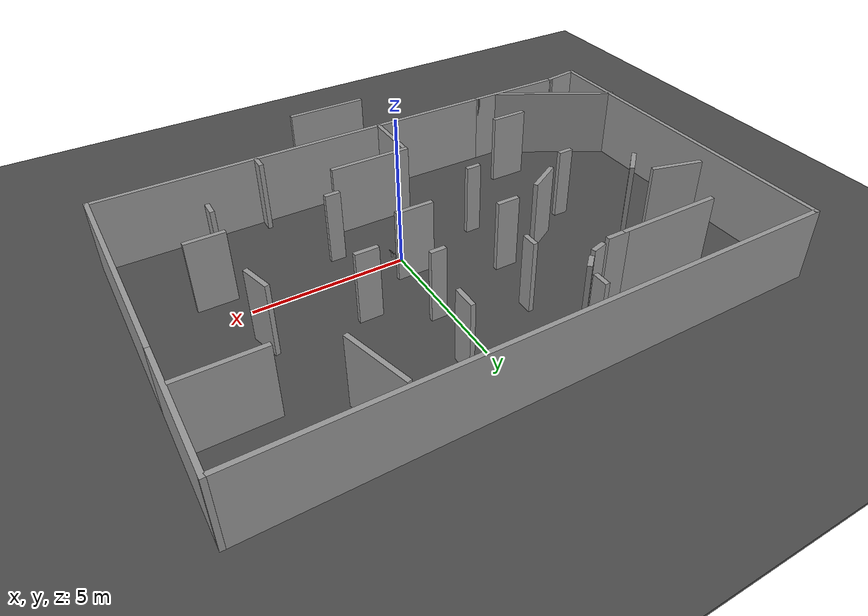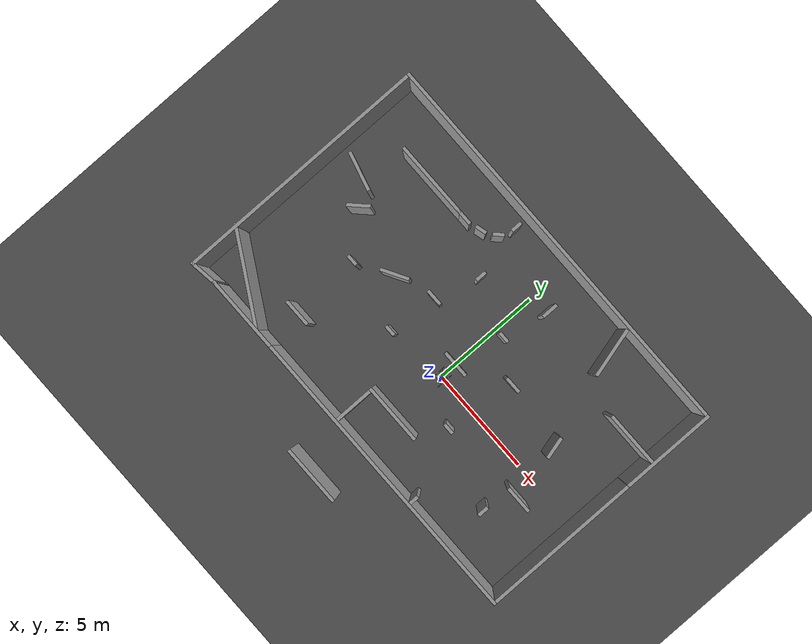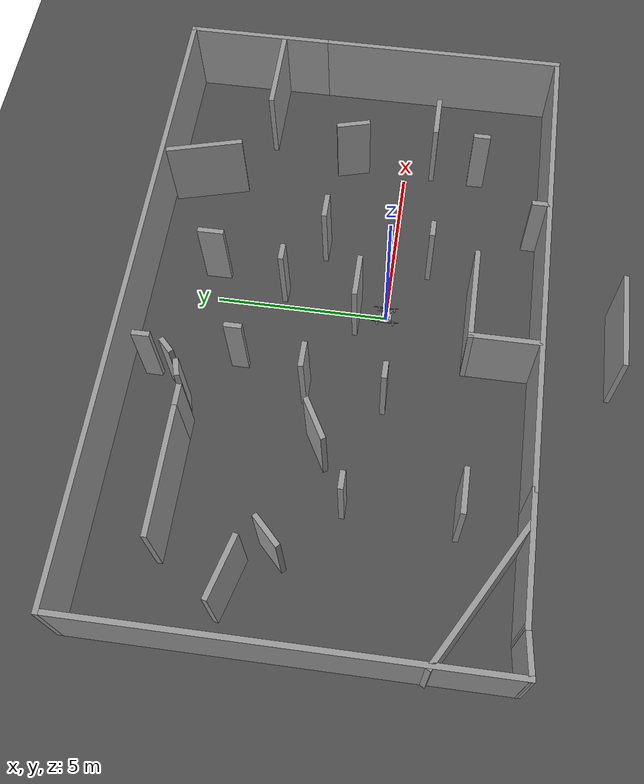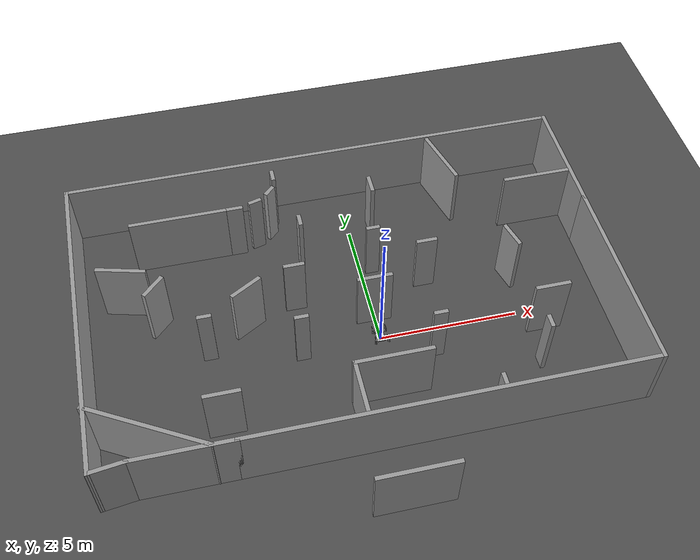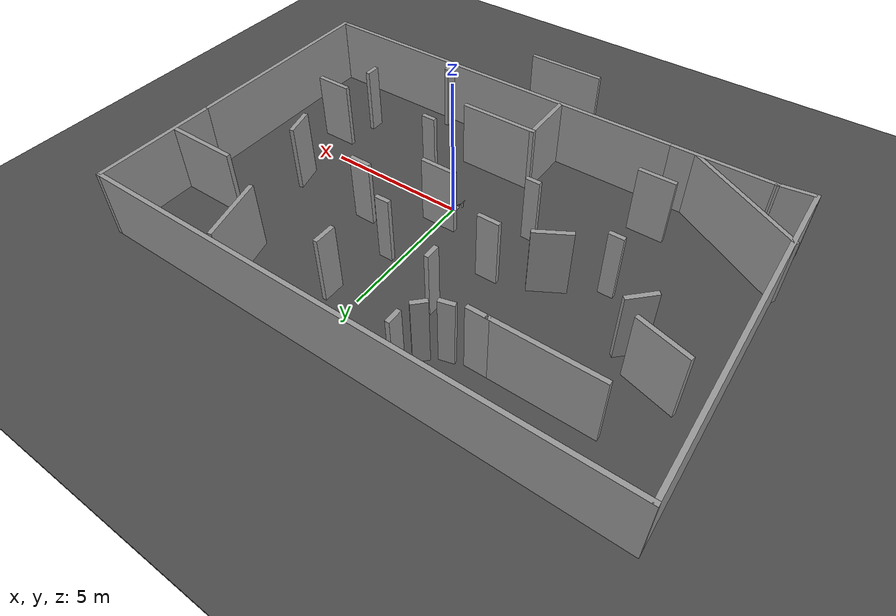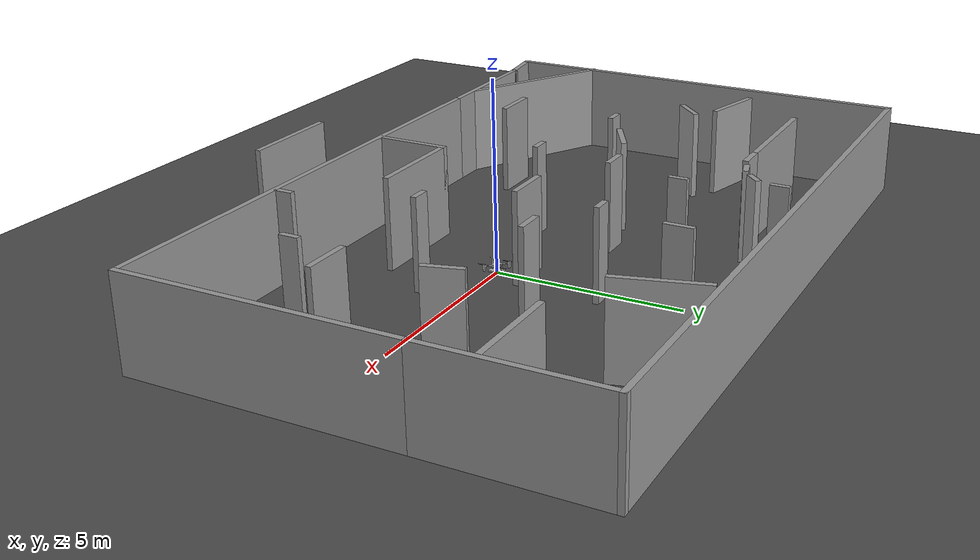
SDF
<sdf version="1.6">
 <world name="default">
  <light name="sun" type="directional">
   <pose>0 0 10 0 -0 0</pose>
   <diffuse>0.8 0.8 0.8 1</diffuse>
   <specular>0.2 0.2 0.2 1</specular>
   <attenuation>
    <range>1000</range>
    <constant>0.9</constant>
    <linear>0.01</linear>
    <quadratic>0.001</quadratic>
   </attenuation>
   <direction>-0.5 0.1 -0.9</direction>
  </light>
  <model name="MaavMatrice">
   <pose>0.0002 0.00022 0.202012 0.001313 0.001448 1.57</pose>
   <static>0</static>
   <plugin name="VehiclePlugin" filename="libMaavVehiclePlugin.so">
    <imu><model_name>MaavImu</model_name><joint_name>MaavImuJoint</joint_name></imu>
   </plugin>
   <model name="SLAM Camera">
    <plugin name="TrackingPlugin" filename="libRealsenseT265Plugin.so"/>
    <link name="T265::link">
     <inertial>
      <mass>0.07</mass>
      <inertia>
       <ixx>5.08e-05</ixx>
       <iyy>7.29167e-06</iyy>
       <izz>5.08e-05</izz>
       <ixy>0</ixy>
       <ixz>0</ixz>
       <iyz>0</iyz>
      </inertia>
     </inertial>
     <visual name="visual">
      <geometry><mesh><uri>model://t265/meshes/t265.dae</uri></mesh></geometry>
      <pose>0 0 0 0 -0 1.57</pose>
     </visual>
     <collision name="collision">
      <pose>0 0 0 0 -0 1.57</pose>
      <geometry><mesh><uri>model://t265/meshes/t265_collision.dae</uri></mesh></geometry>
      <surface>
       <friction>
        <ode><mu>1</mu><mu2>1</mu2><fdir1>0 0 0</fdir1><slip1>0</slip1><slip2>0</slip2></ode>
        <torsional>
         <coefficient>1</coefficient>
         <patch_radius>0</patch_radius>
         <surface_radius>0</surface_radius>
         <use_patch_radius>1</use_patch_radius>
         <ode><slip>0</slip></ode>
        </torsional>
       </friction>
       <bounce><restitution_coefficient>0</restitution_coefficient><threshold>1e+06</threshold></bounce>
       <contact>
        <collide_without_contact>0</collide_without_contact>
        <collide_without_contact_bitmask>1</collide_without_contact_bitmask>
        <collide_bitmask>1</collide_bitmask>
        <ode>
         <soft_cfm>0</soft_cfm>
         <soft_erp>0.2</soft_erp>
         <kp>1e+13</kp>
         <kd>1</kd>
         <max_vel>0.01</max_vel>
         <min_depth>0</min_depth>
        </ode>
        <bullet>
         <split_impulse>1</split_impulse>
         <split_impulse_penetration_threshold>-0.01</split_impulse_penetration_threshold>
         <soft_cfm>0</soft_cfm>
         <soft_erp>0.2</soft_erp>
         <kp>1e+13</kp>
         <kd>1</kd>
        </bullet>
       </contact>
      </surface>
     </collision>
     <sensor name="camera" type="camera">
      <pose>0 0.03 0 0 -0 0</pose>
      <camera name="__default__">
       <horizontal_fov>1.047</horizontal_fov>
       <image><width>320</width><height>240</height></image>
       <clip><near>0.1</near><far>100</far></clip>
      </camera>
      <visualize>1</visualize>
     </sensor>
     <pose>0.125 0 0.05 3.1415 -0.6 0</pose>
    </link>
   </model>
   <joint name="SLAM Camera Joint" type="fixed">
    <parent>fuselage</parent>
    <child>MaavMatrice::SLAM Camera::T265::link</child>
   </joint>
   <model name="Forward Camera">
    <link name="D435::link">
     <inertial>
      <mass>0.07</mass>
      <inertia>
       <ixx>5.08e-05</ixx>
       <iyy>7.29167e-06</iyy>
       <izz>5.08e-05</izz>
       <ixy>0</ixy>
       <ixz>0</ixz>
       <iyz>0</iyz>
      </inertia>
     </inertial>
     <visual name="visual">
      <geometry><mesh><uri>model://d435/meshes/d435.dae</uri></mesh></geometry>
      <pose>0 0 0 0 -0 1.57</pose>
     </visual>
     <collision name="collision">
      <pose>0 0 0 0 -0 1.57</pose>
      <geometry><mesh><uri>model://d435/meshes/d435collision.dae</uri></mesh></geometry>
      <surface>
       <friction>
        <ode><mu>1</mu><mu2>1</mu2><fdir1>0 0 0</fdir1><slip1>0</slip1><slip2>0</slip2></ode>
        <torsional>
         <coefficient>1</coefficient>
         <patch_radius>0</patch_radius>
         <surface_radius>0</surface_radius>
         <use_patch_radius>1</use_patch_radius>
         <ode><slip>0</slip></ode>
        </torsional>
       </friction>
       <bounce><restitution_coefficient>0</restitution_coefficient><threshold>1e+06</threshold></bounce>
       <contact>
        <collide_without_contact>0</collide_without_contact>
        <collide_without_contact_bitmask>1</collide_without_contact_bitmask>
        <collide_bitmask>1</collide_bitmask>
        <ode>
         <soft_cfm>0</soft_cfm>
         <soft_erp>0.2</soft_erp>
         <kp>1e+13</kp>
         <kd>1</kd>
         <max_vel>0.01</max_vel>
         <min_depth>0</min_depth>
        </ode>
        <bullet>
         <split_impulse>1</split_impulse>
         <split_impulse_penetration_threshold>-0.01</split_impulse_penetration_threshold>
         <soft_cfm>0</soft_cfm>
         <soft_erp>0.2</soft_erp>
         <kp>1e+13</kp>
         <kd>1</kd>
        </bullet>
       </contact>
      </surface>
     </collision>
     <sensor name="color" type="camera">
      <pose>0 0.03 0 0 -0 0</pose>
      <camera name="__default__">
       <horizontal_fov>1.047</horizontal_fov>
       <image><width>640</width><height>480</height><format>RGB_INT8</format></image>
       <clip><near>0.1</near><far>100</far></clip>
       <noise><type>gaussian</type><mean>0</mean><stddev>0.007</stddev></noise>
      </camera>
      <always_on>1</always_on>
      <update_rate>15</update_rate>
      <visualize>1</visualize>
     </sensor>
     <sensor name="depth" type="depth">
      <pose>0 0.03 0 0 -0 0</pose>
      <camera name="camera">
       <horizontal_fov>1.047</horizontal_fov>
       <image><width>640</width><height>480</height></image>
       <clip><near>0.1</near><far>100</far></clip>
       <noise><type>gaussian</type><mean>0</mean><stddev>0.007</stddev></noise>
       <depth_camera><output>points</output></depth_camera>
      </camera>
      <always_on>1</always_on>
      <update_rate>15</update_rate>
      <visualize>0</visualize>
      <plugin name="MaavCameraPlugin" filename="libMaavCameraPlugin.so"/>
     </sensor>
     <pose>0.125 0 0 3.1415 -0 0</pose>
    </link>
   </model>
   <joint name="Forward Camera Joint" type="fixed">
    <parent>fuselage</parent>
    <child>MaavMatrice::Forward Camera::D435::link</child>
   </joint>
   <model name="Downward Camera">
    <link name="D435::link">
     <inertial>
      <mass>0.07</mass>
      <inertia>
       <ixx>5.08e-05</ixx>
       <iyy>7.29167e-06</iyy>
       <izz>5.08e-05</izz>
       <ixy>0</ixy>
       <ixz>0</ixz>
       <iyz>0</iyz>
      </inertia>
     </inertial>
     <visual name="visual">
      <geometry><mesh><uri>model://d435/meshes/d435.dae</uri></mesh></geometry>
      <pose>0 0 0 0 -0 1.57</pose>
     </visual>
     <collision name="collision">
      <pose>0 0 0 0 -0 1.57</pose>
      <geometry><mesh><uri>model://d435/meshes/d435collision.dae</uri></mesh></geometry>
      <surface>
       <friction>
        <ode><mu>1</mu><mu2>1</mu2><fdir1>0 0 0</fdir1><slip1>0</slip1><slip2>0</slip2></ode>
        <torsional>
         <coefficient>1</coefficient>
         <patch_radius>0</patch_radius>
         <surface_radius>0</surface_radius>
         <use_patch_radius>1</use_patch_radius>
         <ode><slip>0</slip></ode>
        </torsional>
       </friction>
       <bounce><restitution_coefficient>0</restitution_coefficient><threshold>1e+06</threshold></bounce>
       <contact>
        <collide_without_contact>0</collide_without_contact>
        <collide_without_contact_bitmask>1</collide_without_contact_bitmask>
        <collide_bitmask>1</collide_bitmask>
        <ode>
         <soft_cfm>0</soft_cfm>
         <soft_erp>0.2</soft_erp>
         <kp>1e+13</kp>
         <kd>1</kd>
         <max_vel>0.01</max_vel>
         <min_depth>0</min_depth>
        </ode>
        <bullet>
         <split_impulse>1</split_impulse>
         <split_impulse_penetration_threshold>-0.01</split_impulse_penetration_threshold>
         <soft_cfm>0</soft_cfm>
         <soft_erp>0.2</soft_erp>
         <kp>1e+13</kp>
         <kd>1</kd>
        </bullet>
       </contact>
      </surface>
     </collision>
     <sensor name="color" type="camera">
      <pose>0 0.03 0 0 -0 0</pose>
      <camera name="__default__">
       <horizontal_fov>1.047</horizontal_fov>
       <image><width>640</width><height>480</height><format>RGB_INT8</format></image>
       <clip><near>0.1</near><far>100</far></clip>
       <noise><type>gaussian</type><mean>0</mean><stddev>0.007</stddev></noise>
      </camera>
      <always_on>1</always_on>
      <update_rate>15</update_rate>
      <visualize>1</visualize>
     </sensor>
     <sensor name="depth" type="depth">
      <pose>0 0.03 0 0 -0 0</pose>
      <camera name="camera">
       <horizontal_fov>1.047</horizontal_fov>
       <image><width>640</width><height>480</height></image>
       <clip><near>0.1</near><far>100</far></clip>
       <noise><type>gaussian</type><mean>0</mean><stddev>0.007</stddev></noise>
       <depth_camera><output>points</output></depth_camera>
      </camera>
      <always_on>1</always_on>
      <update_rate>15</update_rate>
      <visualize>0</visualize>
      <plugin name="MaavCameraPlugin" filename="libMaavCameraPlugin.so"/>
     </sensor>
     <pose>0.04 0.08 -0.0125 0 1.57 1.57</pose>
    </link>
    <plugin name="planefit_plugin" filename="libMaavPlanefitPlugin.so"/>
   </model>
   <joint name="Downward Camera Joint" type="fixed">
    <parent>fuselage</parent>
    <child>MaavMatrice::Downward Camera::D435::link</child>
   </joint>
   <model name="Height Lidar">
    <link name="LidarLite::link">
     <inertial>
      <mass>0.027</mass>
      <inertia>
       <ixx>5.97e-06</ixx>
       <iyy>8.67e-06</iyy>
       <izz>4.5e-06</izz>
       <ixy>0</ixy>
       <ixz>0</ixz>
       <iyz>0</iyz>
      </inertia>
     </inertial>
     <visual name="visual">
      <pose>0 0 0 0 1.57 0</pose>
      <geometry><mesh><uri>model://lidar_lite/meshes/LidarLite.dae</uri></mesh></geometry>
     </visual>
     <collision name="collision">
      <pose>0 0 0 0 1.57 0</pose>
      <geometry><mesh><uri>model://lidar_lite/meshes/LidarLiteCollision.dae</uri></mesh></geometry>
      <surface>
       <friction>
        <ode><mu>1</mu><mu2>1</mu2><fdir1>0 0 0</fdir1><slip1>0</slip1><slip2>0</slip2></ode>
        <torsional>
         <coefficient>1</coefficient>
         <patch_radius>0</patch_radius>
         <surface_radius>0</surface_radius>
         <use_patch_radius>1</use_patch_radius>
         <ode><slip>0</slip></ode>
        </torsional>
       </friction>
       <bounce><restitution_coefficient>0</restitution_coefficient><threshold>1e+06</threshold></bounce>
       <contact>
        <collide_without_contact>0</collide_without_contact>
        <collide_without_contact_bitmask>1</collide_without_contact_bitmask>
        <collide_bitmask>1</collide_bitmask>
        <ode>
         <soft_cfm>0</soft_cfm>
         <soft_erp>0.2</soft_erp>
         <kp>1e+13</kp>
         <kd>1</kd>
         <max_vel>0.01</max_vel>
         <min_depth>0</min_depth>
        </ode>
        <bullet>
         <split_impulse>1</split_impulse>
         <split_impulse_penetration_threshold>-0.01</split_impulse_penetration_threshold>
         <soft_cfm>0</soft_cfm>
         <soft_erp>0.2</soft_erp>
         <kp>1e+13</kp>
         <kd>1</kd>
        </bullet>
       </contact>
      </surface>
     </collision>
     <sensor name="maav_lidar" type="ray">
      <always_on>1</always_on>
      <update_rate>50</update_rate>
      <visualize>1</visualize>
      <ray>
       <scan>
        <horizontal>
         <samples>2</samples>
         <resolution>1</resolution>
         <min_angle>0</min_angle>
         <max_angle>0</max_angle>
        </horizontal>
        <vertical>
         <samples>2</samples>
         <resolution>1</resolution>
         <min_angle>-0</min_angle>
         <max_angle>0</max_angle>
        </vertical>
       </scan>
       <range><min>0.03</min><max>10</max><resolution>0.01</resolution></range>
      </ray>
      <plugin name="maav_lidar_plugin" filename="libMaavLidarPlugin.so">
       <noise_density>0.02</noise_density>
       <bias_mean>0.09</bias_mean>
       <bias_std>0.01</bias_std>
       <outlier_mean>9.99</outlier_mean>
       <outlier_std>1</outlier_std>
       <outlier_freq>150</outlier_freq>
       <outlier_chi>1</outlier_chi>
      </plugin>
     </sensor>
     <pose>-0.04 -0.15 -0.0175 0 1.57 0</pose>
    </link>
   </model>
   <joint name="Height Lidar Joint" type="fixed">
    <parent>fuselage</parent>
    <child>MaavMatrice::Height Lidar::LidarLite::link</child>
   </joint>
   <plugin name="ImuPlugin" filename="libMaavImuPlugin.so">
    <linkName>fuselage</linkName>
    <imuTopic>/imu</imuTopic>
    <gyroscopeNoiseDensity>0.0003394</gyroscopeNoiseDensity>
    <gyroscopeRandomWalk>3.8785e-05</gyroscopeRandomWalk>
    <gyroscopeBiasCorrelationTime>1000.0</gyroscopeBiasCorrelationTime>
    <gyroscopeTurnOnBiasSigma>0.0087</gyroscopeTurnOnBiasSigma>
    <accelerometerNoiseDensity>0.004</accelerometerNoiseDensity>
    <accelerometerRandomWalk>0.006</accelerometerRandomWalk>
    <accelerometerBiasCorrelationTime>300.0</accelerometerBiasCorrelationTime>
    <accelerometerTurnOnBiasSigma>0.196</accelerometerTurnOnBiasSigma>
    <frequency>200</frequency>
   </plugin>
   <link name="fuselage">
    <inertial>
     <mass>2</mass>
     <inertia><ixx>0.0216667</ixx><iyy>0.0216667</iyy><izz>0.04</izz><ixy>0</ixy><ixz>0</ixz><iyz>0</iyz></inertia>
    </inertial>
    <visual name="fuselage_visual">
     <geometry><mesh><scale>1 1 1</scale><uri>model://maav_matrice/meshes/Matrice_100.dae</uri></mesh></geometry>
    </visual>
    <collision name="fuselage_collision">
     <geometry>
      <mesh><scale>1 1 1</scale><uri>model://maav_matrice/meshes/Matrice_100_collision.dae</uri></mesh>
     </geometry>
     <surface>
      <contact><ode><min_depth>0.001</min_depth><max_vel>0</max_vel></ode></contact>
      <friction>
       <ode><mu>1</mu><mu2>1</mu2><fdir1>0 0 0</fdir1><slip1>0</slip1><slip2>0</slip2></ode>
       <torsional>
        <coefficient>1</coefficient>
        <patch_radius>0</patch_radius>
        <surface_radius>0</surface_radius>
        <use_patch_radius>1</use_patch_radius>
        <ode><slip>0</slip></ode>
       </torsional>
      </friction>
     </surface>
    </collision>
   </link>
   <link name="rotor_0">
    <pose>0.22981 -0.22981 0.06 0 -0 0</pose>
    <inertial>
     <mass>0.019</mass>
     <inertia>
      <ixx>6.34917e-07</ixx>
      <iyy>4.31078e-05</iyy>
      <izz>4.37396e-05</izz>
      <ixy>0</ixy>
      <ixz>0</ixz>
      <iyz>0</iyz>
     </inertia>
    </inertial>
    <visual name="rotor_0_visual">
     <geometry>
      <mesh><scale>1 1 1</scale><uri>model://matrice_100/meshes/dji_13455_prop_ccw.dae</uri></mesh>
     </geometry>
     <material>
      <script><name>Gazebo/DarkGrey</name><uri>file://media/materials/scripts/gazebo.material</uri></script>
     </material>
    </visual>
    <collision name="rotor_0_collision">
     <geometry><box><size>0.33 0.02 0.001</size></box></geometry>
     <surface><contact><ode><min_depth>0.001</min_depth><max_vel>0</max_vel></ode></contact></surface>
    </collision>
   </link>
   <joint name="rotor_0_joint" type="revolute">
    <parent>fuselage</parent>
    <child>rotor_0</child>
    <axis>
     <xyz>0 0 1</xyz>
     <limit><lower>-1e+16</lower><upper>1e+16</upper></limit>
     <dynamics><spring_reference>0</spring_reference><spring_stiffness>0</spring_stiffness></dynamics>
     <use_parent_model_frame>1</use_parent_model_frame>
    </axis>
   </joint>
   <plugin name="rotor_0_motor_model" filename="libgazebo_motor_model.so">
    <jointName>rotor_0_joint</jointName>
    <linkName>rotor_0</linkName>
    <turningDirection>ccw</turningDirection>
    <timeConstantUp>0.0125</timeConstantUp>
    <timeConstantDown>0.025</timeConstantDown>
    <maxRotVelocity>1100</maxRotVelocity>
    <motorConstant>8.54858e-06</motorConstant>
    <momentConstant>0.06</momentConstant>
    <commandSubTopic>/gazebo/command/motor_speed</commandSubTopic>
    <motorNumber>0</motorNumber>
    <rotorDragCoefficient>0.000806428</rotorDragCoefficient>
    <rollingMomentCoefficient>7.50302e-6</rollingMomentCoefficient>
    <motorSpeedPubTopic>/motor_speed/0</motorSpeedPubTopic>
    <rotorVelocitySlowdownSim>10</rotorVelocitySlowdownSim>
   </plugin>
   <link name="rotor_1">
    <pose>-0.22981 0.22981 0.06 0 -0 0</pose>
    <inertial>
     <mass>0.019</mass>
     <inertia>
      <ixx>6.34917e-07</ixx>
      <iyy>4.31078e-05</iyy>
      <izz>4.37396e-05</izz>
      <ixy>0</ixy>
      <ixz>0</ixz>
      <iyz>0</iyz>
     </inertia>
    </inertial>
    <visual name="rotor_1_visual">
     <geometry>
      <mesh><scale>1 1 1</scale><uri>model://matrice_100/meshes/dji_13455_prop_ccw.dae</uri></mesh>
     </geometry>
     <material>
      <script><name>Gazebo/DarkGrey</name><uri>file://media/materials/scripts/gazebo.material</uri></script>
     </material>
    </visual>
    <collision name="rotor_1_collision">
     <geometry><box><size>0.33 0.02 0.001</size></box></geometry>
     <surface><contact><ode><min_depth>0.001</min_depth><max_vel>0</max_vel></ode></contact></surface>
    </collision>
   </link>
   <joint name="rotor_1_joint" type="revolute">
    <parent>fuselage</parent>
    <child>rotor_1</child>
    <axis>
     <xyz>0 0 1</xyz>
     <limit><lower>-1e+16</lower><upper>1e+16</upper></limit>
     <dynamics><spring_reference>0</spring_reference><spring_stiffness>0</spring_stiffness></dynamics>
     <use_parent_model_frame>1</use_parent_model_frame>
    </axis>
   </joint>
   <plugin name="rotor_1_motor_model" filename="libgazebo_motor_model.so">
    <jointName>rotor_1_joint</jointName>
    <linkName>rotor_1</linkName>
    <turningDirection>ccw</turningDirection>
    <timeConstantUp>0.0125</timeConstantUp>
    <timeConstantDown>0.025</timeConstantDown>
    <maxRotVelocity>1100</maxRotVelocity>
    <motorConstant>8.54858e-06</motorConstant>
    <momentConstant>0.06</momentConstant>
    <commandSubTopic>/gazebo/command/motor_speed</commandSubTopic>
    <motorNumber>1</motorNumber>
    <rotorDragCoefficient>0.000806428</rotorDragCoefficient>
    <rollingMomentCoefficient>7.50302e-6</rollingMomentCoefficient>
    <motorSpeedPubTopic>/motor_speed/1</motorSpeedPubTopic>
    <rotorVelocitySlowdownSim>10</rotorVelocitySlowdownSim>
   </plugin>
   <link name="rotor_2">
    <pose>0.22981 0.22981 0.06 0 -0 0</pose>
    <inertial>
     <mass>0.019</mass>
     <inertia>
      <ixx>6.34917e-07</ixx>
      <iyy>4.31078e-05</iyy>
      <izz>4.37396e-05</izz>
      <ixy>0</ixy>
      <ixz>0</ixz>
      <iyz>0</iyz>
     </inertia>
    </inertial>
    <visual name="rotor_2_visual">
     <geometry>
      <mesh><scale>1 1 1</scale><uri>model://matrice_100/meshes/dji_13455_prop_cw.dae</uri></mesh>
     </geometry>
     <material>
      <script><name>Gazebo/DarkGrey</name><uri>file://media/materials/scripts/gazebo.material</uri></script>
     </material>
    </visual>
    <collision name="rotor_2_collision">
     <geometry><box><size>0.33 0.02 0.001</size></box></geometry>
     <surface><contact><ode><min_depth>0.001</min_depth><max_vel>0</max_vel></ode></contact></surface>
    </collision>
   </link>
   <joint name="rotor_2_joint" type="revolute">
    <parent>fuselage</parent>
    <child>rotor_2</child>
    <axis>
     <xyz>0 0 1</xyz>
     <limit><lower>-1e+16</lower><upper>1e+16</upper></limit>
     <dynamics><spring_reference>0</spring_reference><spring_stiffness>0</spring_stiffness></dynamics>
     <use_parent_model_frame>1</use_parent_model_frame>
    </axis>
   </joint>
   <plugin name="rotor_2_motor_model" filename="libgazebo_motor_model.so">
    <jointName>rotor_2_joint</jointName>
    <linkName>rotor_2</linkName>
    <turningDirection>cw</turningDirection>
    <timeConstantUp>0.0125</timeConstantUp>
    <timeConstantDown>0.025</timeConstantDown>
    <maxRotVelocity>1100</maxRotVelocity>
    <motorConstant>8.54858e-06</motorConstant>
    <momentConstant>0.06</momentConstant>
    <commandSubTopic>/gazebo/command/motor_speed</commandSubTopic>
    <motorNumber>2</motorNumber>
    <rotorDragCoefficient>0.000806428</rotorDragCoefficient>
    <rollingMomentCoefficient>7.50302e-6</rollingMomentCoefficient>
    <motorSpeedPubTopic>/motor_speed/2</motorSpeedPubTopic>
    <rotorVelocitySlowdownSim>10</rotorVelocitySlowdownSim>
   </plugin>
   <link name="rotor_3">
    <pose>-0.22981 -0.22981 0.06 0 -0 0</pose>
    <inertial>
     <mass>0.019</mass>
     <inertia>
      <ixx>6.34917e-07</ixx>
      <iyy>4.31078e-05</iyy>
      <izz>4.37396e-05</izz>
      <ixy>0</ixy>
      <ixz>0</ixz>
      <iyz>0</iyz>
     </inertia>
    </inertial>
    <visual name="rotor_3_visual">
     <geometry>
      <mesh><scale>1 1 1</scale><uri>model://matrice_100/meshes/dji_13455_prop_cw.dae</uri></mesh>
     </geometry>
     <material>
      <script><name>Gazebo/DarkGrey</name><uri>file://media/materials/scripts/gazebo.material</uri></script>
     </material>
    </visual>
    <collision name="rotor_3_collision">
     <geometry><box><size>0.33 0.02 0.001</size></box></geometry>
     <surface><contact><ode><min_depth>0.001</min_depth><max_vel>0</max_vel></ode></contact></surface>
    </collision>
   </link>
   <joint name="rotor_3_joint" type="revolute">
    <parent>fuselage</parent>
    <child>rotor_3</child>
    <axis>
     <xyz>0 0 1</xyz>
     <limit><lower>-1e+16</lower><upper>1e+16</upper></limit>
     <dynamics><spring_reference>0</spring_reference><spring_stiffness>0</spring_stiffness></dynamics>
     <use_parent_model_frame>1</use_parent_model_frame>
    </axis>
   </joint>
   <plugin name="rotor_3_motor_model" filename="libgazebo_motor_model.so">
    <jointName>rotor_3_joint</jointName>
    <linkName>rotor_3</linkName>
    <turningDirection>cw</turningDirection>
    <timeConstantUp>0.0125</timeConstantUp>
    <timeConstantDown>0.025</timeConstantDown>
    <maxRotVelocity>1100</maxRotVelocity>
    <motorConstant>8.54858e-06</motorConstant>
    <momentConstant>0.06</momentConstant>
    <commandSubTopic>/gazebo/command/motor_speed</commandSubTopic>
    <motorNumber>3</motorNumber>
    <rotorDragCoefficient>0.000806428</rotorDragCoefficient>
    <rollingMomentCoefficient>7.50302e-6</rollingMomentCoefficient>
    <motorSpeedPubTopic>/motor_speed/3</motorSpeedPubTopic>
    <rotorVelocitySlowdownSim>10</rotorVelocitySlowdownSim>
   </plugin>
   <plugin name="gps_plugin" filename="libgazebo_gps_plugin.so"><gpsNoise>1</gpsNoise></plugin>
   <plugin name="mavlink_interface" filename="libgazebo_mavlink_interface.so">
    <imuSubTopic>/imu</imuSubTopic>
    <gpsSubTopic>/gps</gpsSubTopic>
    <mavlink_addr>INADDR_ANY</mavlink_addr>
    <mavlink_udp_port>14560</mavlink_udp_port>
    <serialEnabled>0</serialEnabled>
    <serialDevice>/dev/ttyACM0</serialDevice>
    <baudRate>921600</baudRate>
    <qgc_addr>INADDR_ANY</qgc_addr>
    <qgc_udp_port>14550</qgc_udp_port>
    <hil_mode>0</hil_mode>
    <hil_state_level>0</hil_state_level>
    <vehicle_is_tailsitter>0</vehicle_is_tailsitter>
    <send_odometry>0</send_odometry>
    <motorSpeedCommandPubTopic>/gazebo/command/motor_speed</motorSpeedCommandPubTopic>
    <control_channels>
     <channel name="rotor1">
      <input_index>0</input_index>
      <input_offset>0</input_offset>
      <input_scaling>1000</input_scaling>
      <zero_position_disarmed>0</zero_position_disarmed>
      <zero_position_armed>100</zero_position_armed>
      <joint_control_type>velocity</joint_control_type>
     </channel>
     <channel name="rotor2">
      <input_index>1</input_index>
      <input_offset>0</input_offset>
      <input_scaling>1000</input_scaling>
      <zero_position_disarmed>0</zero_position_disarmed>
      <zero_position_armed>100</zero_position_armed>
      <joint_control_type>velocity</joint_control_type>
     </channel>
     <channel name="rotor3">
      <input_index>2</input_index>
      <input_offset>0</input_offset>
      <input_scaling>1000</input_scaling>
      <zero_position_disarmed>0</zero_position_disarmed>
      <zero_position_armed>100</zero_position_armed>
      <joint_control_type>velocity</joint_control_type>
     </channel>
     <channel name="rotor4">
      <input_index>3</input_index>
      <input_offset>0</input_offset>
      <input_scaling>1000</input_scaling>
      <zero_position_disarmed>0</zero_position_disarmed>
      <zero_position_armed>100</zero_position_armed>
      <joint_control_type>velocity</joint_control_type>
     </channel>
     <channel name="rotor5">
      <input_index>4</input_index>
      <input_offset>1</input_offset>
      <input_scaling>324.6</input_scaling>
      <zero_position_disarmed>0</zero_position_disarmed>
      <zero_position_armed>0</zero_position_armed>
      <joint_control_type>velocity</joint_control_type>
      <joint_control_pid>
       <p>0.1</p>
       <i>0</i>
       <d>0</d>
       <iMax>0.0</iMax>
       <iMin>0.0</iMin>
       <cmdMax>2</cmdMax>
       <cmdMin>-2</cmdMin>
      </joint_control_pid>
      <joint_name>zephyr_delta_wing::propeller_joint</joint_name>
     </channel>
     <channel name="rotor6">
      <input_index>5</input_index>
      <input_offset>0</input_offset>
      <input_scaling>0.524</input_scaling>
      <zero_position_disarmed>0</zero_position_disarmed>
      <zero_position_armed>0</zero_position_armed>
      <joint_control_type>position</joint_control_type>
      <joint_name>zephyr_delta_wing::flap_left_joint</joint_name>
      <joint_control_pid>
       <p>10.0</p>
       <i>0</i>
       <d>0</d>
       <iMax>0</iMax>
       <iMin>0</iMin>
       <cmdMax>20</cmdMax>
       <cmdMin>-20</cmdMin>
      </joint_control_pid>
     </channel>
     <channel name="rotor7">
      <input_index>6</input_index>
      <input_offset>0</input_offset>
      <input_scaling>0.524</input_scaling>
      <zero_position_disarmed>0</zero_position_disarmed>
      <zero_position_armed>0</zero_position_armed>
      <joint_control_type>position</joint_control_type>
      <joint_name>zephyr_delta_wing::flap_right_joint</joint_name>
      <joint_control_pid>
       <p>10.0</p>
       <i>0</i>
       <d>0</d>
       <iMax>0</iMax>
       <iMin>0</iMin>
       <cmdMax>20</cmdMax>
       <cmdMin>-20</cmdMin>
      </joint_control_pid>
     </channel>
     <channel name="rotor8">
      <input_index>7</input_index>
      <input_offset>0</input_offset>
      <input_scaling>0.524</input_scaling>
      <zero_position_disarmed>0</zero_position_disarmed>
      <zero_position_armed>0</zero_position_armed>
      <joint_control_type>position</joint_control_type>
     </channel>
    </control_channels>
   </plugin>
   <plugin name="gazebo_imu_plugin" filename="libgazebo_imu_plugin.so">
    <linkName>fuselage</linkName>
    <imuTopic>/imu</imuTopic>
    <gyroscopeNoiseDensity>0.0003394</gyroscopeNoiseDensity>
    <gyroscopeRandomWalk>3.8785e-05</gyroscopeRandomWalk>
    <gyroscopeBiasCorrelationTime>1000.0</gyroscopeBiasCorrelationTime>
    <gyroscopeTurnOnBiasSigma>0.0087</gyroscopeTurnOnBiasSigma>
    <accelerometerNoiseDensity>0.004</accelerometerNoiseDensity>
    <accelerometerRandomWalk>0.006</accelerometerRandomWalk>
    <accelerometerBiasCorrelationTime>300.0</accelerometerBiasCorrelationTime>
    <accelerometerTurnOnBiasSigma>0.196</accelerometerTurnOnBiasSigma>
   </plugin>
  </model>
  <model name="asphalt_plane">
   <static>1</static>
   <link name="link">
    <collision name="collision"><geometry><box><size>200 200 0.1</size></box></geometry></collision>
    <visual name="visual">
     <cast_shadows>0</cast_shadows>
     <geometry><box><size>200 200 0.1</size></box></geometry>
     <material>
      <script>
       <uri>model://asphalt_plane/materials/scripts</uri>
       <uri>model://asphalt_plane/materials/textures</uri>
       <name>vrc/asphalt</name>
      </script>
     </material>
    </visual>
   </link>
  </model>
  <physics name="default_physics" default="0" type="ode">
   <ode>
    <solver>
     <type>quick</type>
     <iters>10</iters>
     <sor>1.3</sor>
     <use_dynamic_moi_rescaling>0</use_dynamic_moi_rescaling>
    </solver>
    <constraints>
     <cfm>0</cfm>
     <erp>0.2</erp>
     <contact_max_correcting_vel>100</contact_max_correcting_vel>
     <contact_surface_layer>0.001</contact_surface_layer>
    </constraints>
   </ode>
   <max_step_size>0.001</max_step_size>
   <real_time_factor>1</real_time_factor>
   <real_time_update_rate>1000</real_time_update_rate>
  </physics>
  <gravity>0 0 -9.8066</gravity>
  <magnetic_field>6e-06 2.3e-05 -4.2e-05</magnetic_field>
  <atmosphere type="adiabatic"/>
  <scene><ambient>0.4 0.4 0.4 1</ambient><background>0.7 0.7 0.7 1</background><shadows>1</shadows></scene>
  <spherical_coordinates>
   <surface_model>EARTH_WGS84</surface_model>
   <latitude_deg>0</latitude_deg>
   <longitude_deg>0</longitude_deg>
   <elevation>0</elevation>
   <heading_deg>0</heading_deg>
  </spherical_coordinates>
  <model name="static-obstacles">
   <pose>-0.962403 0.304793 0 0 -0 0</pose>
   <link name="Wall_0">
    <collision name="Wall_0_Collision">
     <geometry><box><size>2.75 0.15 2.5</size></box></geometry>
     <pose>0 0 1.25 0 -0 0</pose>
    </collision>
    <visual name="Wall_0_Visual">
     <pose>0 0 1.25 0 -0 0</pose>
     <geometry><box><size>2.75 0.15 2.5</size></box></geometry>
     <material>
      <script><uri>file://media/materials/scripts/gazebo.material</uri><name>Gazebo/Grey</name></script>
      <ambient>1 1 1 1</ambient>
     </material>
     <meta><layer>0</layer></meta>
    </visual>
    <pose>0.752403 -2.70479 0 0 -0 0</pose>
   </link>
   <link name="Wall_12">
    <collision name="Wall_12_Collision">
     <geometry><box><size>0.75 0.15 2.5</size></box></geometry>
     <pose>0 0 1.25 0 -0 0</pose>
    </collision>
    <visual name="Wall_12_Visual">
     <pose>0 0 1.25 0 -0 0</pose>
     <geometry><box><size>0.75 0.15 2.5</size></box></geometry>
     <material>
      <script><uri>file://media/materials/scripts/gazebo.material</uri><name>Gazebo/Grey</name></script>
      <ambient>1 1 1 1</ambient>
     </material>
     <meta><layer>0</layer></meta>
    </visual>
    <pose>-1.68881 1.66179 0 0 -0 0</pose>
   </link>
   <link name="Wall_14">
    <collision name="Wall_14_Collision">
     <geometry><box><size>0.75 0.15 2.5</size></box></geometry>
     <pose>0 0 1.25 0 -0 0</pose>
    </collision>
    <visual name="Wall_14_Visual">
     <pose>0 0 1.25 0 -0 0</pose>
     <geometry><box><size>0.75 0.15 2.5</size></box></geometry>
     <material>
      <script><uri>file://media/materials/scripts/gazebo.material</uri><name>Gazebo/Grey</name></script>
      <ambient>1 1 1 1</ambient>
     </material>
     <meta><layer>0</layer></meta>
    </visual>
    <pose>3.07609 1.73118 0 0 -0 0</pose>
   </link>
   <link name="Wall_16">
    <collision name="Wall_16_Collision">
     <geometry><box><size>0.5 0.15 2.5</size></box></geometry>
     <pose>0 0 1.25 0 -0 0</pose>
    </collision>
    <visual name="Wall_16_Visual">
     <pose>0 0 1.25 0 -0 0</pose>
     <geometry><box><size>0.5 0.15 2.5</size></box></geometry>
     <material>
      <script><uri>file://media/materials/scripts/gazebo.material</uri><name>Gazebo/Grey</name></script>
      <ambient>1 1 1 1</ambient>
     </material>
     <meta><layer>0</layer></meta>
    </visual>
    <pose>-1.86008 -0.558747 0 0 -0 0</pose>
   </link>
   <link name="Wall_18">
    <collision name="Wall_18_Collision">
     <geometry><box><size>0.5 0.15 2.5</size></box></geometry>
     <pose>0 0 1.25 0 -0 0</pose>
    </collision>
    <visual name="Wall_18_Visual">
     <pose>0 0 1.25 0 -0 0</pose>
     <geometry><box><size>0.5 0.15 2.5</size></box></geometry>
     <material>
      <script><uri>file://media/materials/scripts/gazebo.material</uri><name>Gazebo/Grey</name></script>
      <ambient>1 1 1 1</ambient>
     </material>
     <meta><layer>0</layer></meta>
    </visual>
    <pose>2.69665 -1.39145 0 0 -0 0</pose>
   </link>
   <link name="Wall_2">
    <collision name="Wall_2_Collision">
     <geometry><box><size>3.5 0.15 2.5</size></box></geometry>
     <pose>0 0 1.25 0 -0 0</pose>
    </collision>
    <visual name="Wall_2_Visual">
     <pose>0 0 1.25 0 -0 0</pose>
     <geometry><box><size>3.5 0.15 2.5</size></box></geometry>
     <material>
      <script><uri>file://media/materials/scripts/gazebo.material</uri><name>Gazebo/Grey</name></script>
      <ambient>1 1 1 1</ambient>
     </material>
     <meta><layer>0</layer></meta>
    </visual>
    <pose>-6.31249 -4.62827 0 0 -0 0</pose>
   </link>
   <link name="Wall_20">
    <collision name="Wall_20_Collision">
     <geometry><box><size>0.5 0.15 2.5</size></box></geometry>
     <pose>0 0 1.25 0 -0 0</pose>
    </collision>
    <visual name="Wall_20_Visual">
     <pose>0 0 1.25 0 -0 0</pose>
     <geometry><box><size>0.5 0.15 2.5</size></box></geometry>
     <material>
      <script><uri>file://media/materials/scripts/gazebo.material</uri><name>Gazebo/Grey</name></script>
      <ambient>1 1 1 1</ambient>
     </material>
     <meta><layer>0</layer></meta>
    </visual>
    <pose>1.37821 2.7258 0 0 -0 0</pose>
   </link>
   <link name="Wall_22">
    <collision name="Wall_22_Collision">
     <geometry><box><size>0.5 0.15 2.5</size></box></geometry>
     <pose>0 0 1.25 0 -0 0</pose>
    </collision>
    <visual name="Wall_22_Visual">
     <pose>0 0 1.25 0 -0 0</pose>
     <geometry><box><size>0.5 0.15 2.5</size></box></geometry>
     <material>
      <script><uri>file://media/materials/scripts/gazebo.material</uri><name>Gazebo/Grey</name></script>
      <ambient>1 1 1 1</ambient>
     </material>
     <meta><layer>0</layer></meta>
    </visual>
    <pose>-5.00584 0.158302 0 0 -0 0</pose>
   </link>
   <link name="Wall_24">
    <collision name="Wall_24_Collision">
     <geometry><box><size>1.25 0.15 2.5</size></box></geometry>
     <pose>0 0 1.25 0 -0 0</pose>
    </collision>
    <visual name="Wall_24_Visual">
     <pose>0 0 1.25 0 -0 0</pose>
     <geometry><box><size>1.25 0.15 2.5</size></box></geometry>
     <material>
      <script><uri>file://media/materials/scripts/gazebo.material</uri><name>Gazebo/Grey</name></script>
      <ambient>1 1 1 1</ambient>
     </material>
     <meta><layer>0</layer></meta>
    </visual>
    <pose>-3.45547 1.08096 0 0 -0 0.523599</pose>
   </link>
   <link name="Wall_26">
    <collision name="Wall_26_Collision">
     <geometry><box><size>14 0.15 2.5</size></box></geometry>
     <pose>0 0 1.25 0 -0 0</pose>
    </collision>
    <visual name="Wall_26_Visual">
     <pose>0 0 1.25 0 -0 0</pose>
     <geometry><box><size>14 0.15 2.5</size></box></geometry>
     <material>
      <script><uri>file://media/materials/scripts/gazebo.material</uri><name>Gazebo/Grey</name></script>
      <ambient>1 1 1 1</ambient>
     </material>
     <meta><layer>0</layer></meta>
    </visual>
    <pose>2.28751 -4.62827 0 0 -0 0</pose>
   </link>
   <link name="Wall_27">
    <collision name="Wall_27_Collision">
     <geometry><box><size>7.25 0.15 2.5</size></box></geometry>
     <pose>0 0 1.25 0 -0 0</pose>
    </collision>
    <visual name="Wall_27_Visual">
     <pose>0 0 1.25 0 -0 0</pose>
     <geometry><box><size>7.25 0.15 2.5</size></box></geometry>
     <material>
      <script><uri>file://media/materials/scripts/gazebo.material</uri><name>Gazebo/Grey</name></script>
      <ambient>1 1 1 1</ambient>
     </material>
     <meta><layer>0</layer></meta>
    </visual>
    <pose>9.21251 -1.07827 0 0 -0 1.5708</pose>
   </link>
   <link name="Wall_28">
    <collision name="Wall_28_Collision">
     <geometry><box><size>4.5 0.15 2.5</size></box></geometry>
     <pose>0 0 1.25 0 -0 0</pose>
    </collision>
    <visual name="Wall_28_Visual">
     <pose>0 0 1.25 0 -0 0</pose>
     <geometry><box><size>4.5 0.15 2.5</size></box></geometry>
     <material>
      <script><uri>file://media/materials/scripts/gazebo.material</uri><name>Gazebo/Grey</name></script>
      <ambient>1 1 1 1</ambient>
     </material>
     <meta><layer>0</layer></meta>
    </visual>
    <pose>9.21251 4.64673 0 0 -0 1.5708</pose>
   </link>
   <link name="Wall_29">
    <collision name="Wall_29_Collision">
     <geometry><box><size>18.5 0.15 2.5</size></box></geometry>
     <pose>0 0 1.25 0 -0 0</pose>
    </collision>
    <visual name="Wall_29_Visual">
     <pose>0 0 1.25 0 -0 0</pose>
     <geometry><box><size>18.5 0.15 2.5</size></box></geometry>
     <material>
      <script><uri>file://media/materials/scripts/gazebo.material</uri><name>Gazebo/Grey</name></script>
      <ambient>1 1 1 1</ambient>
     </material>
     <meta><layer>0</layer></meta>
    </visual>
    <pose>0.037514 6.82173 0 0 -0 3.14159</pose>
   </link>
   <link name="Wall_30">
    <collision name="Wall_30_Collision">
     <geometry><box><size>11.75 0.15 2.5</size></box></geometry>
     <pose>0 0 1.25 0 -0 0</pose>
    </collision>
    <visual name="Wall_30_Visual">
     <pose>0 0 1.25 0 -0 0</pose>
     <geometry><box><size>11.75 0.15 2.5</size></box></geometry>
     <material>
      <script><uri>file://media/materials/scripts/gazebo.material</uri><name>Gazebo/Grey</name></script>
      <ambient>1 1 1 1</ambient>
     </material>
     <meta><layer>0</layer></meta>
    </visual>
    <pose>-9.13749 1.02173 0 0 -0 -1.5708</pose>
   </link>
   <link name="Wall_31">
    <collision name="Wall_31_Collision">
     <geometry><box><size>1.30974 0.15 2.5</size></box></geometry>
     <pose>0 0 1.25 0 -0 0</pose>
    </collision>
    <visual name="Wall_31_Visual">
     <pose>0 0 1.25 0 -0 0</pose>
     <geometry><box><size>1.30974 0.15 2.5</size></box></geometry>
     <material>
      <script><uri>file://media/materials/scripts/gazebo.material</uri><name>Gazebo/Grey</name></script>
      <ambient>1 1 1 1</ambient>
     </material>
     <meta><layer>0</layer></meta>
    </visual>
    <pose>-8.56249 -4.70327 0 0 -0 0.129703</pose>
   </link>
   <link name="Wall_33">
    <collision name="Wall_33_Collision">
     <geometry><box><size>2.25 0.15 2.5</size></box></geometry>
     <pose>0 0 1.25 0 -0 0</pose>
    </collision>
    <visual name="Wall_33_Visual">
     <pose>0 0 1.25 0 -0 0</pose>
     <geometry><box><size>2.25 0.15 2.5</size></box></geometry>
     <material>
      <script><uri>file://media/materials/scripts/gazebo.material</uri><name>Gazebo/Grey</name></script>
      <ambient>1 1 1 1</ambient>
     </material>
     <meta><layer>0</layer></meta>
    </visual>
    <pose>4.7182 5.60791 0 0 -0 -1.309</pose>
   </link>
   <link name="Wall_35">
    <collision name="Wall_35_Collision">
     <geometry><box><size>2.5 0.15 2.5</size></box></geometry>
     <pose>0 0 1.25 0 -0 0</pose>
    </collision>
    <visual name="Wall_35_Visual">
     <pose>0 0 1.25 0 -0 0</pose>
     <geometry><box><size>2.5 0.15 2.5</size></box></geometry>
     <material>
      <script><uri>file://media/materials/scripts/gazebo.material</uri><name>Gazebo/Grey</name></script>
      <ambient>1 1 1 1</ambient>
     </material>
     <meta><layer>0</layer></meta>
    </visual>
    <pose>7.90112 3.92375 0 0 -0 0</pose>
   </link>
   <link name="Wall_38">
    <collision name="Wall_38_Collision">
     <geometry><box><size>0.75 0.15 2.5</size></box></geometry>
     <pose>0 0 1.25 0 -0 0</pose>
    </collision>
    <visual name="Wall_38_Visual">
     <pose>0 0 1.25 0 -0 0</pose>
     <geometry><box><size>0.75 0.15 2.5</size></box></geometry>
     <material>
      <script><uri>file://media/materials/scripts/gazebo.material</uri><name>Gazebo/Grey</name></script>
      <ambient>1 1 1 1</ambient>
     </material>
     <meta><layer>0</layer></meta>
    </visual>
    <pose>-3.34872 4.71465 0 0 -0 0</pose>
   </link>
   <link name="Wall_40">
    <collision name="Wall_40_Collision">
     <geometry><box><size>0.5 0.15 2.5</size></box></geometry>
     <pose>0 0 1.25 0 -0 0</pose>
    </collision>
    <visual name="Wall_40_Visual">
     <pose>0 0 1.25 0 -0 0</pose>
     <geometry><box><size>0.5 0.15 2.5</size></box></geometry>
     <material>
      <script><uri>file://media/materials/scripts/gazebo.material</uri><name>Gazebo/Grey</name></script>
      <ambient>1 1 1 1</ambient>
     </material>
     <meta><layer>0</layer></meta>
    </visual>
    <pose>-1.0899 3.6557 0 0 -0 -1.5708</pose>
   </link>
   <link name="Wall_42">
    <collision name="Wall_42_Collision">
     <geometry><box><size>0.75 0.15 2.5</size></box></geometry>
     <pose>0 0 1.25 0 -0 0</pose>
    </collision>
    <visual name="Wall_42_Visual">
     <pose>0 0 1.25 0 -0 0</pose>
     <geometry><box><size>0.75 0.15 2.5</size></box></geometry>
     <material>
      <script><uri>file://media/materials/scripts/gazebo.material</uri><name>Gazebo/Grey</name></script>
      <ambient>1 1 1 1</ambient>
     </material>
     <meta><layer>0</layer></meta>
    </visual>
    <pose>1.79458 4.83337 0 0 -0 -1.5708</pose>
   </link>
   <link name="Wall_44">
    <collision name="Wall_44_Collision">
     <geometry><box><size>1.25 0.15 2.5</size></box></geometry>
     <pose>0 0 1.25 0 -0 0</pose>
    </collision>
    <visual name="Wall_44_Visual">
     <pose>0 0 1.25 0 -0 0</pose>
     <geometry><box><size>1.25 0.15 2.5</size></box></geometry>
     <material>
      <script><uri>file://media/materials/scripts/gazebo.material</uri><name>Gazebo/Grey</name></script>
      <ambient>1 1 1 1</ambient>
     </material>
     <meta><layer>0</layer></meta>
    </visual>
    <pose>6.71783 -1.14736 0 0 -0 0</pose>
   </link>
   <link name="Wall_46">
    <collision name="Wall_46_Collision">
     <geometry><box><size>1 0.15 2.5</size></box></geometry>
     <pose>0 0 1.25 0 -0 0</pose>
    </collision>
    <visual name="Wall_46_Visual">
     <pose>0 0 1.25 0 -0 0</pose>
     <geometry><box><size>1 0.15 2.5</size></box></geometry>
     <material>
      <script><uri>file://media/materials/scripts/gazebo.material</uri><name>Gazebo/Grey</name></script>
      <ambient>1 1 1 1</ambient>
     </material>
     <meta><layer>0</layer></meta>
    </visual>
    <pose>6.09173 1.32661 0 0 -0 -1.309</pose>
   </link>
   <link name="Wall_48">
    <collision name="Wall_48_Collision">
     <geometry><box><size>2 0.15 2.5</size></box></geometry>
     <pose>0 0 1.25 0 -0 0</pose>
    </collision>
    <visual name="Wall_48_Visual">
     <pose>0 0 1.25 0 -0 0</pose>
     <geometry><box><size>2 0.15 2.5</size></box></geometry>
     <material>
      <script><uri>file://media/materials/scripts/gazebo.material</uri><name>Gazebo/Grey</name></script>
      <ambient>1 1 1 1</ambient>
     </material>
     <meta><layer>0</layer></meta>
    </visual>
    <pose>-0.547597 -3.62979 0 0 -0 -1.5708</pose>
   </link>
   <link name="Wall_5">
    <collision name="Wall_5_Collision">
     <geometry><box><size>2.75 0.15 2.5</size></box></geometry>
     <pose>0 0 1.25 0 -0 0</pose>
    </collision>
    <visual name="Wall_5_Visual">
     <pose>0 0 1.25 0 -0 0</pose>
     <geometry><box><size>2.75 0.15 2.5</size></box></geometry>
     <material>
      <script><uri>file://media/materials/scripts/gazebo.material</uri><name>Gazebo/Grey</name></script>
      <ambient>1 1 1 1</ambient>
     </material>
     <meta><layer>0</layer></meta>
    </visual>
    <pose>0.458977 -6.82174 0 0 -0 0</pose>
   </link>
   <link name="Wall_50">
    <collision name="Wall_50_Collision">
     <geometry><box><size>1.25 0.15 2.5</size></box></geometry>
     <pose>0 0 1.25 0 -0 0</pose>
    </collision>
    <visual name="Wall_50_Visual">
     <pose>0 0 1.25 0 -0 0</pose>
     <geometry><box><size>1.25 0.15 2.5</size></box></geometry>
     <material>
      <script><uri>file://media/materials/scripts/gazebo.material</uri><name>Gazebo/Grey</name></script>
      <ambient>1 1 1 1</ambient>
     </material>
     <meta><layer>0</layer></meta>
    </visual>
    <pose>-4.86662 -2.91527 0 0 -0 0</pose>
   </link>
   <link name="Wall_52">
    <collision name="Wall_52_Collision">
     <geometry><box><size>1 0.15 2.5</size></box></geometry>
     <pose>0 0 1.25 0 -0 0</pose>
    </collision>
    <visual name="Wall_52_Visual">
     <pose>0 0 1.25 0 -0 0</pose>
     <geometry><box><size>1 0.15 2.5</size></box></geometry>
     <material>
      <script><uri>file://media/materials/scripts/gazebo.material</uri><name>Gazebo/Grey</name></script>
      <ambient>1 1 1 1</ambient>
     </material>
     <meta><layer>0</layer></meta>
    </visual>
    <pose>-6.51182 1.80502 0 0 -0 0.785398</pose>
   </link>
   <link name="Wall_54">
    <collision name="Wall_54_Collision">
     <geometry><box><size>1.75 0.15 2.5</size></box></geometry>
     <pose>0 0 1.25 0 -0 0</pose>
    </collision>
    <visual name="Wall_54_Visual">
     <pose>0 0 1.25 0 -0 0</pose>
     <geometry><box><size>1.75 0.15 2.5</size></box></geometry>
     <material>
      <script><uri>file://media/materials/scripts/gazebo.material</uri><name>Gazebo/Grey</name></script>
      <ambient>1 1 1 1</ambient>
     </material>
     <meta><layer>0</layer></meta>
    </visual>
    <pose>-7.52837 2.73969 0 0 -0 -0.261799</pose>
   </link>
   <link name="Wall_56">
    <collision name="Wall_56_Collision">
     <geometry><box><size>0.5 0.15 2.5</size></box></geometry>
     <pose>0 0 1.25 0 -0 0</pose>
    </collision>
    <visual name="Wall_56_Visual">
     <pose>0 0 1.25 0 -0 0</pose>
     <geometry><box><size>0.5 0.15 2.5</size></box></geometry>
     <material>
      <script><uri>file://media/materials/scripts/gazebo.material</uri><name>Gazebo/Grey</name></script>
      <ambient>1 1 1 1</ambient>
     </material>
     <meta><layer>0</layer></meta>
    </visual>
    <pose>-2.50268 4.89952 0 0 -0 0.261799</pose>
   </link>
   <link name="Wall_58">
    <collision name="Wall_58_Collision">
     <geometry><box><size>0.5 0.15 2.5</size></box></geometry>
     <pose>0 0 1.25 0 -0 0</pose>
    </collision>
    <visual name="Wall_58_Visual">
     <pose>0 0 1.25 0 -0 0</pose>
     <geometry><box><size>0.5 0.15 2.5</size></box></geometry>
     <material>
      <script><uri>file://media/materials/scripts/gazebo.material</uri><name>Gazebo/Grey</name></script>
      <ambient>1 1 1 1</ambient>
     </material>
     <meta><layer>0</layer></meta>
    </visual>
    <pose>-1.89664 5.30364 0 0 -0 0.785398</pose>
   </link>
   <link name="Wall_60">
    <collision name="Wall_60_Collision">
     <geometry><box><size>0.5 0.15 2.5</size></box></geometry>
     <pose>0 0 1.25 0 -0 0</pose>
    </collision>
    <visual name="Wall_60_Visual">
     <pose>0 0 1.25 0 -0 0</pose>
     <geometry><box><size>0.5 0.15 2.5</size></box></geometry>
     <material>
      <script><uri>file://media/materials/scripts/gazebo.material</uri><name>Gazebo/Grey</name></script>
      <ambient>1 1 1 1</ambient>
     </material>
     <meta><layer>0</layer></meta>
    </visual>
    <pose>-1.64819 6.05275 0 0 -0 1.5708</pose>
   </link>
   <link name="Wall_62">
    <collision name="Wall_62_Collision">
     <geometry><box><size>3.5 0.15 2.5</size></box></geometry>
     <pose>0 0 1.25 0 -0 0</pose>
    </collision>
    <visual name="Wall_62_Visual">
     <pose>0 0 1.25 0 -0 0</pose>
     <geometry><box><size>3.5 0.15 2.5</size></box></geometry>
     <material>
      <script><uri>file://media/materials/scripts/gazebo.material</uri><name>Gazebo/Grey</name></script>
      <ambient>1 1 1 1</ambient>
     </material>
     <meta><layer>0</layer></meta>
    </visual>
    <pose>-5.32372 4.71465 0 0 -0 3.14159</pose>
   </link>
   <link name="Wall_64">
    <collision name="Wall_64_Collision">
     <geometry><box><size>0.5 0.15 2.5</size></box></geometry>
     <pose>0 0 1.25 0 -0 0</pose>
    </collision>
    <visual name="Wall_64_Visual">
     <pose>0 0 1.25 0 -0 0</pose>
     <geometry><box><size>0.5 0.15 2.5</size></box></geometry>
     <material>
      <script><uri>file://media/materials/scripts/gazebo.material</uri><name>Gazebo/Grey</name></script>
      <ambient>1 1 1 1</ambient>
     </material>
     <meta><layer>0</layer></meta>
    </visual>
    <pose>3.93468 -4.3686 0 0 -0 1.5708</pose>
   </link>
   <link name="Wall_66">
    <collision name="Wall_66_Collision">
     <geometry><box><size>0.5 0.15 2.5</size></box></geometry>
     <pose>0 0 1.25 0 -0 0</pose>
    </collision>
    <visual name="Wall_66_Visual">
     <pose>0 0 1.25 0 -0 0</pose>
     <geometry><box><size>0.5 0.15 2.5</size></box></geometry>
     <material>
      <script><uri>file://media/materials/scripts/gazebo.material</uri><name>Gazebo/Grey</name></script>
      <ambient>1 1 1 1</ambient>
     </material>
     <meta><layer>0</layer></meta>
    </visual>
    <pose>6.12131 -2.53198 0 0 -0 -1.5708</pose>
   </link>
   <link name="Wall_68">
    <collision name="Wall_68_Collision">
     <geometry><box><size>4.5 0.15 2.5</size></box></geometry>
     <pose>0 0 1.25 0 -0 0</pose>
    </collision>
    <visual name="Wall_68_Visual">
     <pose>0 0 1.25 0 -0 0</pose>
     <geometry><box><size>4.5 0.15 2.5</size></box></geometry>
     <material>
      <script><uri>file://media/materials/scripts/gazebo.material</uri><name>Gazebo/Grey</name></script>
      <ambient>1 1 1 1</ambient>
     </material>
     <meta><layer>0</layer></meta>
    </visual>
    <pose>-7.30146 -3.53753 0 0 -0 -0.523599</pose>
   </link>
   <link name="Wall_8">
    <collision name="Wall_8_Collision">
     <geometry><box><size>1.25 0.15 2.5</size></box></geometry>
     <pose>0 0 1.25 0 -0 0</pose>
    </collision>
    <visual name="Wall_8_Visual">
     <pose>0 0 1.25 0 -0 0</pose>
     <geometry><box><size>1.25 0.15 2.5</size></box></geometry>
     <material>
      <script><uri>file://media/materials/scripts/gazebo.material</uri><name>Gazebo/Grey</name></script>
      <ambient>1 1 1 1</ambient>
     </material>
     <meta><layer>0</layer></meta>
    </visual>
    <pose>0.911847 0.536999 0 0 -0 0</pose>
   </link>
   <static>1</static>
  </model>
 </world>
</sdf>
